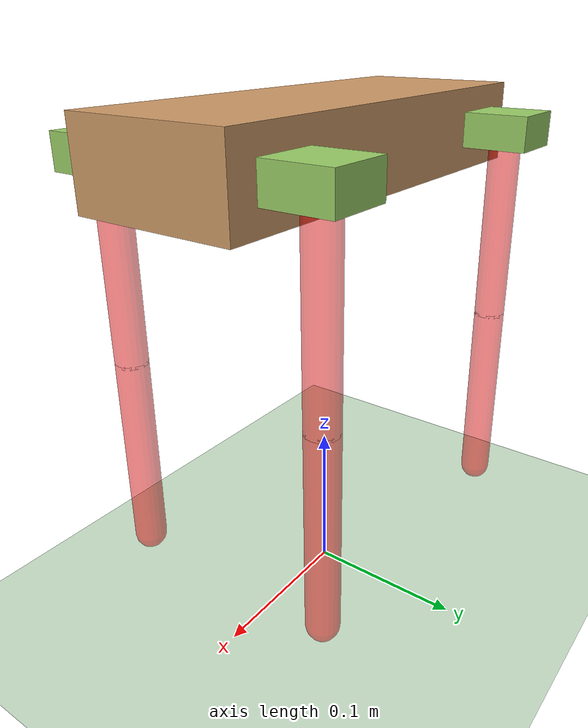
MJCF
<mujoco model="cheetah">
    <compiler angle="radian" coordinate="local" inertiafromgeom="false"/>

    <default>
        <joint armature="0.01936" stiffness="0"/>
        <geom conaffinity="0" condim="3" contype="1" friction="1.5 .1 .1" rgba="0.8 0.6 .4 1"/>
        <position forcelimited="true"/>
    </default>

    <size nstack="300000" nuser_geom="1"/>

    <asset>
        <texture builtin="gradient" height="100" rgb1="1 1 1" rgb2="0 0 0" type="skybox" width="100"/>
        <texture builtin="flat" height="1278" mark="cross" markrgb="1 1 1" name="texgeom" random="0.01"
                 rgb1="0.8 0.6 0.4" rgb2="0.8 0.6 0.4" type="cube" width="127"/>
        <texture builtin="checker" height="100" name="texplane" rgb1="0 0 0" rgb2="0.8 0.8 0.8" type="2d" width="100"/>
        <material name="MatPlane" reflectance="0.5" shininess="1" specular="1" texrepeat="60 60" texture="texplane"/>
        <material name="geom" texture="texgeom" texuniform="true"/>
    </asset>

    <worldbody>
        <geom conaffinity="1" condim="3" material="MatPlane" name="floor" pos="0 0 0" rgba="0.8 0.9 0.8 1"
              size="40 40 40" type="plane"/>
        <body name="torso" pos="0 0 0.3">
            <inertial pos="0 0 0" mass="0.56" diaginertia="0.0005532 0.0037619999999999997 0.004011000000000001"/>
            <geom pos="0 0 0" name="torso" size="0.138 0.05 0.025" type="box"/>
            <site name="imu_site" pos="0 0 0" size=".01 .01 .01" type="box"/>

            <body name="fr_module" pos="0.1 -0.04 0">
                <geom pos="0 -0.0132 0" name="fr_block" type="box" size="0.0197 0.0372 0.0107" rgba="0.6 0.8 .4 1"/>
                <joint axis="1 0 0" name="fr_x" pos="0 0 0" limited="true" range="-1.57 1.57" type="hinge"
                       damping="1.049"/>
                <inertial pos="0 0 0" mass="0.08" diaginertia="3.698e-05 7.127e-06 4.075e-05"/>
                <body name="fr" pos="0 -0.03 0">
                    <joint axis="0 1 0" name="fr_y" pos="0 0 0" limited="true" range="-1.57 1.57" type="hinge"
                           damping="1.049"/>
                    <inertial pos="0 0 0" mass="0.03"
                              diaginertia="1.3020833333333332e-05 1.3020833333333332e-05 1e-06"/>
                    <geom axisangle="0 1 0 0" name="fr" fromto="0 0 0 0 0 -0.125" size="0.01" type="capsule"
                          rgba="1 0 0 0.5" density="50"/>
                    <body name="fr2" pos="0 0 -0.1235">
                        <joint axis="0 1 0" name="fr_y2" pos="0 0 0" limited="true" range="-3.14 0.0" type="hinge"
                               damping="1.049"/>
                        <inertial pos="0 0 0" mass="0.03"
                                  diaginertia="1.3020833333333332e-05 1.3020833333333332e-05 1e-06"/>
                        <geom axisangle="0 1 0 0" name="fr_l2" fromto="0 0 0 0 0 -0.125" size="0.01" type="capsule"
                              rgba="1 0 0 0.5" density="50"/>
                    </body>
                </body>
            </body>

            <body name="fl_module" pos="0.1 0.04 0">
                <geom pos="0 0.0132 0" name="fl_block" type="box" size="0.0197 0.0372 0.0107" rgba="0.6 0.8 .4 1"/>
                <joint axis="1 0 0" name="fl_x" pos="0 0 0" limited="true" range="-1.57 1.57" type="hinge"
                       damping="1.049"/>
                <inertial pos="0 0 0" mass="0.08" diaginertia="3.698e-05 7.127e-06 4.075e-05"/>
                <body name="fl" pos="0 0.03 0">
                    <joint axis="0 1 0" name="fl_y" pos="0 0 0" limited="true" range="-1.57 1.57" type="hinge"
                           damping="1.049"/>
                    <inertial pos="0 0 0" mass="0.03"
                              diaginertia="1.3020833333333332e-05 1.3020833333333332e-05 1e-06"/>
                    <geom axisangle="0 1 0 0" name="fl" fromto="0 0 0 0 0 -0.125" size="0.01" type="capsule"
                          rgba="1 0 0 0.5" density="50"/>
                    <body name="fl2" pos="0 0 -0.1235">
                        <joint axis="0 1 0" name="fl_y2" pos="0 0 0" limited="true" range="-3.14 0.0" type="hinge"
                               damping="1.049"/>
                        <inertial pos="0 0 0" mass="0.03"
                                  diaginertia="1.3020833333333332e-05 1.3020833333333332e-05 1e-06"/>
                        <geom axisangle="0 1 0 0" name="fl_l2" fromto="0 0 0 0 0 -0.125" size="0.01" type="capsule"
                              rgba="1 0 0 0.5" density="50"/>
                    </body>
                </body>
            </body>

            <body name="br_module" pos="-0.1 -0.04 0">
                <geom pos="0 -0.0132 0" name="br_block" type="box" size="0.0197 0.0372 0.0107" rgba="0.6 0.8 .4 1"/>
                <joint axis="1 0 0" name="br_x" pos="0 0 0" limited="true" range="-1.57 1.57" type="hinge"
                       damping="1.049"/>
                <inertial pos="0 0 0" mass="0.08" diaginertia="3.698e-05 7.127e-06 4.075e-05"/>
                <body name="br" pos="0 -0.03 0">
                    <joint axis="0 1 0" name="br_y" pos="0 0 0" limited="true" range="-1.57 1.57" type="hinge"
                           damping="1.049"/>
                    <inertial pos="0 0 0" mass="0.03"
                              diaginertia="1.3020833333333332e-05 1.3020833333333332e-05 1e-06"/>
                    <geom axisangle="0 1 0 0" name="br" fromto="0 0 0 0 0 -0.125" size="0.01" type="capsule"
                          rgba="1 0 0 0.5" density="50"/>
                    <body name="br2" pos="0 0 -0.1235">
                        <joint axis="0 1 0" name="br_y2" pos="0 0 0" limited="true" range="-3.14 0.0" type="hinge"
                               damping="1.049"/>
                        <inertial pos="0 0 0" mass="0.03"
                                  diaginertia="1.3020833333333332e-05 1.3020833333333332e-05 1e-06"/>
                        <geom axisangle="0 1 0 0" name="br_l2" fromto="0 0 0 0 0 -0.125" size="0.01" type="capsule"
                              rgba="1 0 0 0.5" density="50"/>
                    </body>
                </body>
            </body>

            <body name="bl_module" pos="-0.1 0.04 0">
                <geom pos="0 0.0132 0" name="bl_block" type="box" size="0.0197 0.0372 0.0107" rgba="0.6 0.8 .4 1"/>
                <joint axis="1 0 0" name="bl_x" pos="0 0 0" limited="true" range="-1.57 1.57" type="hinge"
                       damping="1.049"/>
                <inertial pos="0 0 0" mass="0.08" diaginertia="3.698e-05 7.127e-06 4.075e-05"/>
                <body name="bl" pos="0 0.03 0">
                    <joint axis="0 1 0" name="bl_y" pos="0 0 0" limited="true" range="-1.57 1.57" type="hinge"
                           damping="1.049"/>
                    <inertial pos="0 0 0" mass="0.03"
                              diaginertia="1.3020833333333332e-05 1.3020833333333332e-05 1e-06"/>
                    <geom axisangle="0 1 0 0" name="bl" fromto="0 0 0 0 0 -0.125" size="0.01" type="capsule"
                          rgba="1 0 0 0.5" density="50"/>
                    <body name="bl2" pos="0 0 -0.1235">
                        <joint axis="0 1 0" name="bl_y2" pos="0 0 0" limited="true" range="-3.14 0.0" type="hinge"
                               damping="1.049"/>
                        <inertial pos="0 0 0" mass="0.03"
                                  diaginertia="1.3020833333333332e-05 1.3020833333333332e-05 1e-06"/>
                        <geom axisangle="0 1 0 0" name="bl_l2" fromto="0 0 0 0 0 -0.125" size="0.01" type="capsule"
                              rgba="1 0 0 0.5" density="50"/>
                    </body>
                </body>
            </body>
        </body>
    </worldbody>

    <actuator>
        <position gear="1" joint="fr_x" name="fr_x" kp="300" forcerange="-6.0 6.0"/>
        <position gear="1" joint="fr_y" name="fr_y" kp="300" forcerange="-6.0 6.0"/>
        <position gear="1" joint="fr_y2" name="fr_y2" kp="300" forcerange="-6.0 6.0"/>

        <position gear="1" joint="fl_x" name="fl_x" kp="300" forcerange="-6.0 6.0"/>
        <position gear="1" joint="fl_y" name="fl_y" kp="300" forcerange="-6.0 6.0"/>
        <position gear="1" joint="fl_y2" name="fl_y2" kp="300" forcerange="-6.0 6.0"/>

        <position gear="1" joint="br_x" name="br_x" kp="300" forcerange="-6.0 6.0"/>
        <position gear="1" joint="br_y" name="br_y" kp="300" forcerange="-6.0 6.0"/>
        <position gear="1" joint="br_y2" name="br_y2" kp="300" forcerange="-6.0 6.0"/>

        <position gear="1" joint="bl_x" name="bl_x" kp="300" forcerange="-6.0 6.0"/>
        <position gear="1" joint="bl_y" name="bl_y" kp="300" forcerange="-6.0 6.0"/>
        <position gear="1" joint="bl_y2" name="bl_y2" kp="300" forcerange="-6.0 6.0"/>
    </actuator>
</mujoco>
